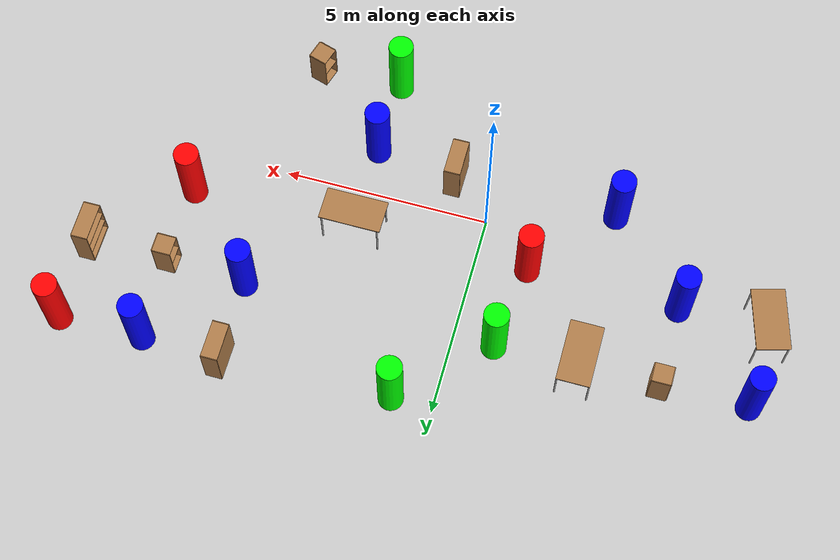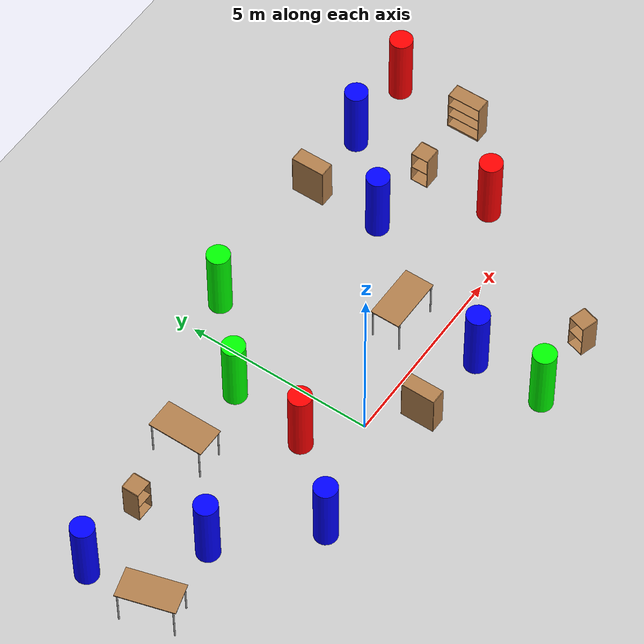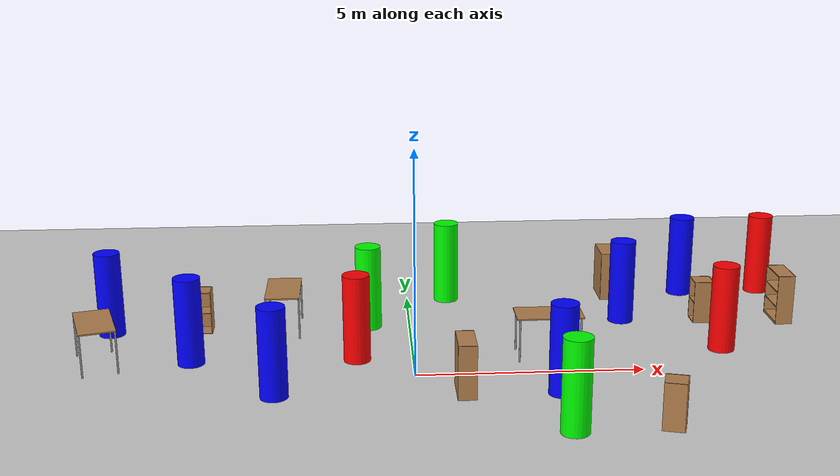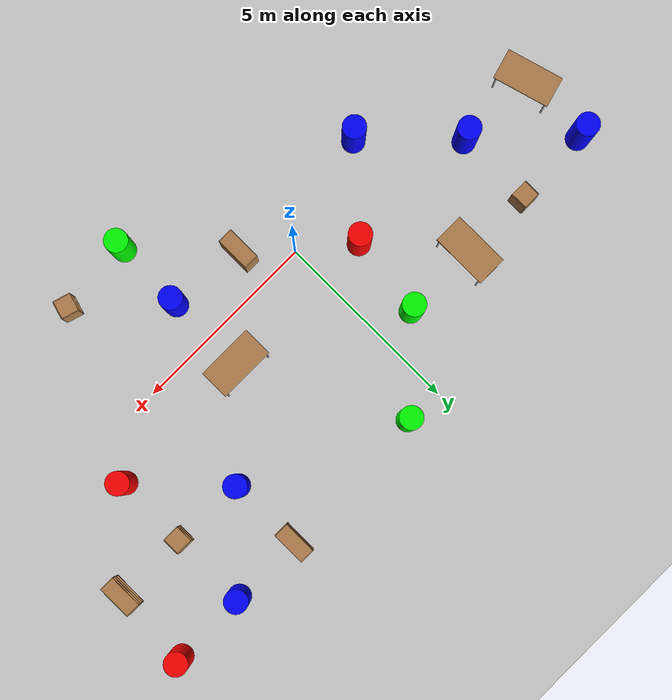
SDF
<sdf version="1.6">
 <world name="default">
  <light name="sun" type="directional">
   <pose>0 0 10 0 -0 0</pose>
   <diffuse>0.8 0.8 0.8 1</diffuse>
   <specular>0.2 0.2 0.2 1</specular>
   <attenuation>
    <range>1000</range>
    <constant>0.9</constant>
    <linear>0.01</linear>
    <quadratic>0.001</quadratic>
   </attenuation>
   <direction>-0.5 0.1 -0.9</direction>
  </light>
  <model name="ground_plane">
   <static>1</static>
   <link name="link">
    <collision name="collision">
     <geometry><plane><normal>0 0 1</normal><size>100 100</size></plane></geometry>
     <surface>
      <contact><collide_bitmask>65535</collide_bitmask></contact>
      <friction><ode><mu>100</mu><mu2>50</mu2></ode></friction>
     </surface>
    </collision>
    <visual name="visual">
     <cast_shadows>0</cast_shadows>
     <geometry><plane><normal>0 0 1</normal><size>100 100</size></plane></geometry>
     <material>
      <script><uri>file://media/materials/scripts/gazebo.material</uri><name>Gazebo/Grey</name></script>
     </material>
    </visual>
   </link>
  </model>
  <gravity>0 0 -9.8</gravity>
  <magnetic_field>6e-06 2.3e-05 -4.2e-05</magnetic_field>
  <atmosphere type="adiabatic"/>
  <physics name="default_physics" default="0" type="ode">
   <max_step_size>0.001</max_step_size>
   <real_time_factor>1</real_time_factor>
   <real_time_update_rate>1000</real_time_update_rate>
  </physics>
  <scene><ambient>0.4 0.4 0.4 1</ambient><background>0.7 0.7 0.7 1</background><shadows>0</shadows></scene>
  <audio><device>default</device></audio>
  <spherical_coordinates>
   <surface_model>EARTH_WGS84</surface_model>
   <latitude_deg>0</latitude_deg>
   <longitude_deg>0</longitude_deg>
   <elevation>0</elevation>
   <heading_deg>0</heading_deg>
  </spherical_coordinates>
  <model name="bookshelf0">
   <static>1</static>
   <link name="link">
    <inertial><mass>1</mass></inertial>
    <collision name="back">
     <pose>0 0.005 0.6 0 -0 0</pose>
     <geometry><box><size>0.9 0.01 1.2</size></box></geometry>
    </collision>
    <visual name="visual1">
     <pose>0 0.005 0.6 0 -0 0</pose>
     <geometry><box><size>0.9 0.01 1.2</size></box></geometry>
     <material>
      <script><uri>file://media/materials/scripts/gazebo.material</uri><name>Gazebo/Wood</name></script>
     </material>
    </visual>
    <collision name="left_side">
     <pose>0.45 -0.195 0.6 0 -0 0</pose>
     <geometry><box><size>0.02 0.4 1.2</size></box></geometry>
    </collision>
    <visual name="visual2">
     <pose>0.45 -0.195 0.6 0 -0 0</pose>
     <geometry><box><size>0.02 0.4 1.2</size></box></geometry>
     <material>
      <script><uri>file://media/materials/scripts/gazebo.material</uri><name>Gazebo/Wood</name></script>
     </material>
    </visual>
    <collision name="right_side">
     <pose>-0.45 -0.195 0.6 0 -0 0</pose>
     <geometry><box><size>0.02 0.4 1.2</size></box></geometry>
    </collision>
    <visual name="visual3">
     <pose>-0.45 -0.195 0.6 0 -0 0</pose>
     <geometry><box><size>0.02 0.4 1.2</size></box></geometry>
     <material>
      <script><uri>file://media/materials/scripts/gazebo.material</uri><name>Gazebo/Wood</name></script>
     </material>
    </visual>
    <collision name="bottom">
     <pose>0 -0.195 0.03 0 -0 0</pose>
     <geometry><box><size>0.88 0.4 0.06</size></box></geometry>
    </collision>
    <visual name="visual4">
     <pose>0 -0.195 0.03 0 -0 0</pose>
     <geometry><box><size>0.88 0.4 0.06</size></box></geometry>
     <material>
      <script><uri>file://media/materials/scripts/gazebo.material</uri><name>Gazebo/Wood</name></script>
     </material>
    </visual>
    <collision name="top">
     <pose>0 -0.195 1.19 0 -0 0</pose>
     <geometry><box><size>0.88 0.4 0.02</size></box></geometry>
    </collision>
    <visual name="visual5">
     <pose>0 -0.195 1.19 0 -0 0</pose>
     <geometry><box><size>0.88 0.4 0.02</size></box></geometry>
     <material>
      <script><uri>file://media/materials/scripts/gazebo.material</uri><name>Gazebo/Wood</name></script>
     </material>
    </visual>
    <collision name="low_shelf">
     <pose>0 -0.195 0.43 0 -0 0</pose>
     <geometry><box><size>0.88 0.4 0.02</size></box></geometry>
    </collision>
    <visual name="visual6">
     <pose>0 -0.195 0.43 0 -0 0</pose>
     <geometry><box><size>0.88 0.4 0.02</size></box></geometry>
     <material>
      <script><uri>file://media/materials/scripts/gazebo.material</uri><name>Gazebo/Wood</name></script>
     </material>
    </visual>
    <collision name="high_shelf">
     <pose>0 -0.195 0.8 0 -0 0</pose>
     <geometry><box><size>0.88 0.4 0.02</size></box></geometry>
    </collision>
    <visual name="visual7">
     <pose>0 -0.195 0.8 0 -0 0</pose>
     <geometry><box><size>0.88 0.4 0.02</size></box></geometry>
     <material>
      <script><uri>file://media/materials/scripts/gazebo.material</uri><name>Gazebo/Wood</name></script>
     </material>
    </visual>
   </link>
   <pose>0.815481 -0.939661 0 0 -0 1.5708</pose>
  </model>
  <model name="bookshelf3">
   <static>1</static>
   <link name="link">
    <inertial><mass>1</mass></inertial>
    <collision name="back">
     <pose>0 0.005 0.6 0 -0 0</pose>
     <geometry><box><size>0.9 0.01 1.2</size></box></geometry>
    </collision>
    <visual name="visual1">
     <pose>0 0.005 0.6 0 -0 0</pose>
     <geometry><box><size>0.9 0.01 1.2</size></box></geometry>
     <material>
      <script><uri>file://media/materials/scripts/gazebo.material</uri><name>Gazebo/Wood</name></script>
     </material>
    </visual>
    <collision name="left_side">
     <pose>0.45 -0.195 0.6 0 -0 0</pose>
     <geometry><box><size>0.02 0.4 1.2</size></box></geometry>
    </collision>
    <visual name="visual2">
     <pose>0.45 -0.195 0.6 0 -0 0</pose>
     <geometry><box><size>0.02 0.4 1.2</size></box></geometry>
     <material>
      <script><uri>file://media/materials/scripts/gazebo.material</uri><name>Gazebo/Wood</name></script>
     </material>
    </visual>
    <collision name="right_side">
     <pose>-0.45 -0.195 0.6 0 -0 0</pose>
     <geometry><box><size>0.02 0.4 1.2</size></box></geometry>
    </collision>
    <visual name="visual3">
     <pose>-0.45 -0.195 0.6 0 -0 0</pose>
     <geometry><box><size>0.02 0.4 1.2</size></box></geometry>
     <material>
      <script><uri>file://media/materials/scripts/gazebo.material</uri><name>Gazebo/Wood</name></script>
     </material>
    </visual>
    <collision name="bottom">
     <pose>0 -0.195 0.03 0 -0 0</pose>
     <geometry><box><size>0.88 0.4 0.06</size></box></geometry>
    </collision>
    <visual name="visual4">
     <pose>0 -0.195 0.03 0 -0 0</pose>
     <geometry><box><size>0.88 0.4 0.06</size></box></geometry>
     <material>
      <script><uri>file://media/materials/scripts/gazebo.material</uri><name>Gazebo/Wood</name></script>
     </material>
    </visual>
    <collision name="top">
     <pose>0 -0.195 1.19 0 -0 0</pose>
     <geometry><box><size>0.88 0.4 0.02</size></box></geometry>
    </collision>
    <visual name="visual5">
     <pose>0 -0.195 1.19 0 -0 0</pose>
     <geometry><box><size>0.88 0.4 0.02</size></box></geometry>
     <material>
      <script><uri>file://media/materials/scripts/gazebo.material</uri><name>Gazebo/Wood</name></script>
     </material>
    </visual>
    <collision name="low_shelf">
     <pose>0 -0.195 0.43 0 -0 0</pose>
     <geometry><box><size>0.88 0.4 0.02</size></box></geometry>
    </collision>
    <visual name="visual6">
     <pose>0 -0.195 0.43 0 -0 0</pose>
     <geometry><box><size>0.88 0.4 0.02</size></box></geometry>
     <material>
      <script><uri>file://media/materials/scripts/gazebo.material</uri><name>Gazebo/Wood</name></script>
     </material>
    </visual>
    <collision name="high_shelf">
     <pose>0 -0.195 0.8 0 -0 0</pose>
     <geometry><box><size>0.88 0.4 0.02</size></box></geometry>
    </collision>
    <visual name="visual7">
     <pose>0 -0.195 0.8 0 -0 0</pose>
     <geometry><box><size>0.88 0.4 0.02</size></box></geometry>
     <material>
      <script><uri>file://media/materials/scripts/gazebo.material</uri><name>Gazebo/Wood</name></script>
     </material>
    </visual>
   </link>
   <pose>9.14831 3.01375 0 0 0 -1.57079</pose>
  </model>
  <model name="bookshelf4">
   <static>1</static>
   <link name="link">
    <inertial><mass>1</mass></inertial>
    <collision name="back">
     <pose>0 0.005 0.6 0 -0 0</pose>
     <geometry><box><size>0.9 0.01 1.2</size></box></geometry>
    </collision>
    <visual name="visual1">
     <pose>0 0.005 0.6 0 -0 0</pose>
     <geometry><box><size>0.9 0.01 1.2</size></box></geometry>
     <material>
      <script><uri>file://media/materials/scripts/gazebo.material</uri><name>Gazebo/Wood</name></script>
     </material>
    </visual>
    <collision name="left_side">
     <pose>0.45 -0.195 0.6 0 -0 0</pose>
     <geometry><box><size>0.02 0.4 1.2</size></box></geometry>
    </collision>
    <visual name="visual2">
     <pose>0.45 -0.195 0.6 0 -0 0</pose>
     <geometry><box><size>0.02 0.4 1.2</size></box></geometry>
     <material>
      <script><uri>file://media/materials/scripts/gazebo.material</uri><name>Gazebo/Wood</name></script>
     </material>
    </visual>
    <collision name="right_side">
     <pose>-0.45 -0.195 0.6 0 -0 0</pose>
     <geometry><box><size>0.02 0.4 1.2</size></box></geometry>
    </collision>
    <visual name="visual3">
     <pose>-0.45 -0.195 0.6 0 -0 0</pose>
     <geometry><box><size>0.02 0.4 1.2</size></box></geometry>
     <material>
      <script><uri>file://media/materials/scripts/gazebo.material</uri><name>Gazebo/Wood</name></script>
     </material>
    </visual>
    <collision name="bottom">
     <pose>0 -0.195 0.03 0 -0 0</pose>
     <geometry><box><size>0.88 0.4 0.06</size></box></geometry>
    </collision>
    <visual name="visual4">
     <pose>0 -0.195 0.03 0 -0 0</pose>
     <geometry><box><size>0.88 0.4 0.06</size></box></geometry>
     <material>
      <script><uri>file://media/materials/scripts/gazebo.material</uri><name>Gazebo/Wood</name></script>
     </material>
    </visual>
    <collision name="top">
     <pose>0 -0.195 1.19 0 -0 0</pose>
     <geometry><box><size>0.88 0.4 0.02</size></box></geometry>
    </collision>
    <visual name="visual5">
     <pose>0 -0.195 1.19 0 -0 0</pose>
     <geometry><box><size>0.88 0.4 0.02</size></box></geometry>
     <material>
      <script><uri>file://media/materials/scripts/gazebo.material</uri><name>Gazebo/Wood</name></script>
     </material>
    </visual>
    <collision name="low_shelf">
     <pose>0 -0.195 0.43 0 -0 0</pose>
     <geometry><box><size>0.88 0.4 0.02</size></box></geometry>
    </collision>
    <visual name="visual6">
     <pose>0 -0.195 0.43 0 -0 0</pose>
     <geometry><box><size>0.88 0.4 0.02</size></box></geometry>
     <material>
      <script><uri>file://media/materials/scripts/gazebo.material</uri><name>Gazebo/Wood</name></script>
     </material>
    </visual>
    <collision name="high_shelf">
     <pose>0 -0.195 0.8 0 -0 0</pose>
     <geometry><box><size>0.88 0.4 0.02</size></box></geometry>
    </collision>
    <visual name="visual7">
     <pose>0 -0.195 0.8 0 -0 0</pose>
     <geometry><box><size>0.88 0.4 0.02</size></box></geometry>
     <material>
      <script><uri>file://media/materials/scripts/gazebo.material</uri><name>Gazebo/Wood</name></script>
     </material>
    </visual>
   </link>
   <pose>4.88803 5.06253 0 0 -0 1.5708</pose>
  </model>
  <model name="cabinet0">
   <static>1</static>
   <link name="cabinet_bottom_plate">
    <inertial>
     <pose>0 0 -1 0 -0 0</pose>
     <inertia><ixx>2.05</ixx><ixy>0</ixy><ixz>0</ixz><iyy>2.05</iyy><iyz>0</iyz><izz>2.05</izz></inertia>
     <mass>25</mass>
    </inertial>
    <collision name="cabinet_bottom_plate_geom">
     <pose>0 0 0.01 0 -0 0</pose>
     <geometry><box><size>0.45 0.45 0.02</size></box></geometry>
    </collision>
    <visual name="cabinet_bottom_plate_geom_visual">
     <pose>0 0 0.01 0 -0 0</pose>
     <geometry><box><size>0.45 0.45 0.02</size></box></geometry>
     <material>
      <script><uri>file://media/materials/scripts/gazebo.material</uri><name>Gazebo/Wood</name></script>
     </material>
    </visual>
    <collision name="cabinet_bottom_plate_geom_cabinet_back_plate">
     <pose>0.235 0 0.51 0 -0 0</pose>
     <geometry><box><size>0.02 0.45 1.02</size></box></geometry>
    </collision>
    <visual name="cabinet_bottom_plate_geom_cabinet_back_plate_visual">
     <pose>0.235 0 0.51 0 -0 0</pose>
     <geometry><box><size>0.02 0.45 1.02</size></box></geometry>
     <material>
      <script><uri>file://media/materials/scripts/gazebo.material</uri><name>Gazebo/Wood</name></script>
     </material>
    </visual>
    <collision name="cabinet_bottom_plate_geom_cabinet_left_plate">
     <pose>0 0.235 0.51 0 -0 0</pose>
     <geometry><box><size>0.45 0.02 1.02</size></box></geometry>
    </collision>
    <visual name="cabinet_bottom_plate_geom_cabinet_left_plate_visual">
     <pose>0 0.235 0.51 0 -0 0</pose>
     <geometry><box><size>0.45 0.02 1.02</size></box></geometry>
     <material>
      <script><uri>file://media/materials/scripts/gazebo.material</uri><name>Gazebo/Wood</name></script>
     </material>
    </visual>
    <collision name="cabinet_bottom_plate_geom_cabinet_middle_plate">
     <pose>0 0 0.51 0 -0 0</pose>
     <geometry><box><size>0.45 0.45 0.02</size></box></geometry>
    </collision>
    <visual name="cabinet_bottom_plate_geom_cabinet_middle_plate_visual">
     <pose>0 0 0.51 0 -0 0</pose>
     <geometry><box><size>0.45 0.45 0.02</size></box></geometry>
     <material>
      <script><uri>file://media/materials/scripts/gazebo.material</uri><name>Gazebo/Wood</name></script>
     </material>
    </visual>
    <collision name="cabinet_bottom_plate_geom_cabinet_right_plate">
     <pose>0 -0.235 0.51 0 -0 0</pose>
     <geometry><box><size>0.45 0.02 1.02</size></box></geometry>
    </collision>
    <visual name="cabinet_bottom_plate_geom_cabinet_right_plate_visual">
     <pose>0 -0.235 0.51 0 -0 0</pose>
     <geometry><box><size>0.45 0.02 1.02</size></box></geometry>
     <material>
      <script><uri>file://media/materials/scripts/gazebo.material</uri><name>Gazebo/Wood</name></script>
     </material>
    </visual>
    <collision name="cabinet_bottom_plate_geom_cabinet_top_plate">
     <pose>0 0 1.01 0 -0 0</pose>
     <geometry><box><size>0.45 0.45 0.02</size></box></geometry>
    </collision>
    <visual name="cabinet_bottom_plate_geom_cabinet_top_plate_visual">
     <pose>0 0 1.01 0 -0 0</pose>
     <geometry><box><size>0.45 0.45 0.02</size></box></geometry>
     <material>
      <script><uri>file://media/materials/scripts/gazebo.material</uri><name>Gazebo/Wood</name></script>
     </material>
    </visual>
   </link>
   <pose>7.02974 3.02765 0 0 -0 0</pose>
  </model>
  <model name="cabinet4">
   <static>1</static>
   <link name="cabinet_bottom_plate">
    <inertial>
     <pose>0 0 -1 0 -0 0</pose>
     <inertia><ixx>2.05</ixx><ixy>0</ixy><ixz>0</ixz><iyy>2.05</iyy><iyz>0</iyz><izz>2.05</izz></inertia>
     <mass>25</mass>
    </inertial>
    <collision name="cabinet_bottom_plate_geom">
     <pose>0 0 0.01 0 -0 0</pose>
     <geometry><box><size>0.45 0.45 0.02</size></box></geometry>
    </collision>
    <visual name="cabinet_bottom_plate_geom_visual">
     <pose>0 0 0.01 0 -0 0</pose>
     <geometry><box><size>0.45 0.45 0.02</size></box></geometry>
     <material>
      <script><uri>file://media/materials/scripts/gazebo.material</uri><name>Gazebo/Wood</name></script>
     </material>
    </visual>
    <collision name="cabinet_bottom_plate_geom_cabinet_back_plate">
     <pose>0.235 0 0.51 0 -0 0</pose>
     <geometry><box><size>0.02 0.45 1.02</size></box></geometry>
    </collision>
    <visual name="cabinet_bottom_plate_geom_cabinet_back_plate_visual">
     <pose>0.235 0 0.51 0 -0 0</pose>
     <geometry><box><size>0.02 0.45 1.02</size></box></geometry>
     <material>
      <script><uri>file://media/materials/scripts/gazebo.material</uri><name>Gazebo/Wood</name></script>
     </material>
    </visual>
    <collision name="cabinet_bottom_plate_geom_cabinet_left_plate">
     <pose>0 0.235 0.51 0 -0 0</pose>
     <geometry><box><size>0.45 0.02 1.02</size></box></geometry>
    </collision>
    <visual name="cabinet_bottom_plate_geom_cabinet_left_plate_visual">
     <pose>0 0.235 0.51 0 -0 0</pose>
     <geometry><box><size>0.45 0.02 1.02</size></box></geometry>
     <material>
      <script><uri>file://media/materials/scripts/gazebo.material</uri><name>Gazebo/Wood</name></script>
     </material>
    </visual>
    <collision name="cabinet_bottom_plate_geom_cabinet_middle_plate">
     <pose>0 0 0.51 0 -0 0</pose>
     <geometry><box><size>0.45 0.45 0.02</size></box></geometry>
    </collision>
    <visual name="cabinet_bottom_plate_geom_cabinet_middle_plate_visual">
     <pose>0 0 0.51 0 -0 0</pose>
     <geometry><box><size>0.45 0.45 0.02</size></box></geometry>
     <material>
      <script><uri>file://media/materials/scripts/gazebo.material</uri><name>Gazebo/Wood</name></script>
     </material>
    </visual>
    <collision name="cabinet_bottom_plate_geom_cabinet_right_plate">
     <pose>0 -0.235 0.51 0 -0 0</pose>
     <geometry><box><size>0.45 0.02 1.02</size></box></geometry>
    </collision>
    <visual name="cabinet_bottom_plate_geom_cabinet_right_plate_visual">
     <pose>0 -0.235 0.51 0 -0 0</pose>
     <geometry><box><size>0.45 0.02 1.02</size></box></geometry>
     <material>
      <script><uri>file://media/materials/scripts/gazebo.material</uri><name>Gazebo/Wood</name></script>
     </material>
    </visual>
    <collision name="cabinet_bottom_plate_geom_cabinet_top_plate">
     <pose>0 0 1.01 0 -0 0</pose>
     <geometry><box><size>0.45 0.45 0.02</size></box></geometry>
    </collision>
    <visual name="cabinet_bottom_plate_geom_cabinet_top_plate_visual">
     <pose>0 0 1.01 0 -0 0</pose>
     <geometry><box><size>0.45 0.45 0.02</size></box></geometry>
     <material>
      <script><uri>file://media/materials/scripts/gazebo.material</uri><name>Gazebo/Wood</name></script>
     </material>
    </visual>
   </link>
   <pose>-4.89969 3.05427 0 0 -0 1.5708</pose>
  </model>
  <model name="table1">
   <static>1</static>
   <link name="link">
    <collision name="surface">
     <pose>0 0 1 0 -0 0</pose>
     <geometry><box><size>1.5 0.8 0.03</size></box></geometry>
     <surface><friction><ode><mu>0.6</mu><mu2>0.6</mu2></ode></friction></surface>
    </collision>
    <visual name="visual1">
     <pose>0 0 1 0 -0 0</pose>
     <geometry><box><size>1.5 0.8 0.03</size></box></geometry>
     <material>
      <script><uri>file://media/materials/scripts/gazebo.material</uri><name>Gazebo/Wood</name></script>
     </material>
    </visual>
    <collision name="front_left_leg">
     <pose>0.68 0.38 0.5 0 -0 0</pose>
     <geometry><cylinder><radius>0.02</radius><length>1</length></cylinder></geometry>
    </collision>
    <visual name="front_left_leg">
     <pose>0.68 0.38 0.5 0 -0 0</pose>
     <geometry><cylinder><radius>0.02</radius><length>1</length></cylinder></geometry>
     <material>
      <script><uri>file://media/materials/scripts/gazebo.material</uri><name>Gazebo/Grey</name></script>
     </material>
    </visual>
    <collision name="front_right_leg">
     <pose>0.68 -0.38 0.5 0 -0 0</pose>
     <geometry><cylinder><radius>0.02</radius><length>1</length></cylinder></geometry>
    </collision>
    <visual name="front_right_leg">
     <pose>0.68 -0.38 0.5 0 -0 0</pose>
     <geometry><cylinder><radius>0.02</radius><length>1</length></cylinder></geometry>
     <material>
      <script><uri>file://media/materials/scripts/gazebo.material</uri><name>Gazebo/Grey</name></script>
     </material>
    </visual>
    <collision name="back_right_leg">
     <pose>-0.68 -0.38 0.5 0 -0 0</pose>
     <geometry><cylinder><radius>0.02</radius><length>1</length></cylinder></geometry>
    </collision>
    <visual name="back_right_leg">
     <pose>-0.68 -0.38 0.5 0 -0 0</pose>
     <geometry><cylinder><radius>0.02</radius><length>1</length></cylinder></geometry>
     <material>
      <script><uri>file://media/materials/scripts/gazebo.material</uri><name>Gazebo/Grey</name></script>
     </material>
    </visual>
    <collision name="back_left_leg">
     <pose>-0.68 0.38 0.5 0 -0 0</pose>
     <geometry><cylinder><radius>0.02</radius><length>1</length></cylinder></geometry>
    </collision>
    <visual name="back_left_leg">
     <pose>-0.68 0.38 0.5 0 -0 0</pose>
     <geometry><cylinder><radius>0.02</radius><length>1</length></cylinder></geometry>
     <material>
      <script><uri>file://media/materials/scripts/gazebo.material</uri><name>Gazebo/Grey</name></script>
     </material>
    </visual>
   </link>
   <pose>3.01483 0.983647 0 0 -0 0</pose>
  </model>
  <model name="table2">
   <static>1</static>
   <link name="link">
    <collision name="surface">
     <pose>0 0 1 0 -0 0</pose>
     <geometry><box><size>1.5 0.8 0.03</size></box></geometry>
     <surface><friction><ode><mu>0.6</mu><mu2>0.6</mu2></ode></friction></surface>
    </collision>
    <visual name="visual1">
     <pose>0 0 1 0 -0 0</pose>
     <geometry><box><size>1.5 0.8 0.03</size></box></geometry>
     <material>
      <script><uri>file://media/materials/scripts/gazebo.material</uri><name>Gazebo/Wood</name></script>
     </material>
    </visual>
    <collision name="front_left_leg">
     <pose>0.68 0.38 0.5 0 -0 0</pose>
     <geometry><cylinder><radius>0.02</radius><length>1</length></cylinder></geometry>
    </collision>
    <visual name="front_left_leg">
     <pose>0.68 0.38 0.5 0 -0 0</pose>
     <geometry><cylinder><radius>0.02</radius><length>1</length></cylinder></geometry>
     <material>
      <script><uri>file://media/materials/scripts/gazebo.material</uri><name>Gazebo/Grey</name></script>
     </material>
    </visual>
    <collision name="front_right_leg">
     <pose>0.68 -0.38 0.5 0 -0 0</pose>
     <geometry><cylinder><radius>0.02</radius><length>1</length></cylinder></geometry>
    </collision>
    <visual name="front_right_leg">
     <pose>0.68 -0.38 0.5 0 -0 0</pose>
     <geometry><cylinder><radius>0.02</radius><length>1</length></cylinder></geometry>
     <material>
      <script><uri>file://media/materials/scripts/gazebo.material</uri><name>Gazebo/Grey</name></script>
     </material>
    </visual>
    <collision name="back_right_leg">
     <pose>-0.68 -0.38 0.5 0 -0 0</pose>
     <geometry><cylinder><radius>0.02</radius><length>1</length></cylinder></geometry>
    </collision>
    <visual name="back_right_leg">
     <pose>-0.68 -0.38 0.5 0 -0 0</pose>
     <geometry><cylinder><radius>0.02</radius><length>1</length></cylinder></geometry>
     <material>
      <script><uri>file://media/materials/scripts/gazebo.material</uri><name>Gazebo/Grey</name></script>
     </material>
    </visual>
    <collision name="back_left_leg">
     <pose>-0.68 0.38 0.5 0 -0 0</pose>
     <geometry><cylinder><radius>0.02</radius><length>1</length></cylinder></geometry>
    </collision>
    <visual name="back_left_leg">
     <pose>-0.68 0.38 0.5 0 -0 0</pose>
     <geometry><cylinder><radius>0.02</radius><length>1</length></cylinder></geometry>
     <material>
      <script><uri>file://media/materials/scripts/gazebo.material</uri><name>Gazebo/Grey</name></script>
     </material>
    </visual>
   </link>
   <pose>-2.97552 3.06916 0 0 -0 1.5708</pose>
  </model>
  <model name="red0">
   <link name="link">
    <pose>-0.202221 0.506091 0 0 -0 0</pose>
    <inertial>
     <mass>1</mass>
     <inertia><ixx>0.145833</ixx><ixy>0</ixy><ixz>0</ixz><iyy>0.145833</iyy><iyz>0</iyz><izz>0.125</izz></inertia>
    </inertial>
    <visual name="visual">
     <geometry><cylinder><radius>0.3</radius><length>2</length></cylinder></geometry>
     <material>
      <script><name>Gazebo/Grey</name><uri>file://media/materials/scripts/gazebo.material</uri></script>
      <ambient>1 0 0 1</ambient>
      <diffuse>0.7 0.7 0.7 1</diffuse>
      <specular>0.01 0.01 0.01 1</specular>
      <emissive>0 0 0 1</emissive>
      <shader type="vertex"><normal_map>__default__</normal_map></shader>
     </material>
    </visual>
    <collision name="collision">
     <geometry><cylinder><radius>0.3</radius><length>2</length></cylinder></geometry>
     <surface>
      <friction>
       <ode><mu>1</mu><mu2>1</mu2><fdir1>0 0 0</fdir1><slip1>0</slip1><slip2>0</slip2></ode>
       <torsional>
        <coefficient>1</coefficient>
        <patch_radius>0</patch_radius>
        <surface_radius>0</surface_radius>
        <use_patch_radius>1</use_patch_radius>
        <ode><slip>0</slip></ode>
       </torsional>
      </friction>
      <bounce><restitution_coefficient>0</restitution_coefficient><threshold>1e+06</threshold></bounce>
      <contact>
       <collide_without_contact>0</collide_without_contact>
       <collide_without_contact_bitmask>1</collide_without_contact_bitmask>
       <collide_bitmask>1</collide_bitmask>
       <ode>
        <soft_cfm>0</soft_cfm>
        <soft_erp>0.2</soft_erp>
        <kp>1e+13</kp>
        <kd>1</kd>
        <max_vel>0.01</max_vel>
        <min_depth>0</min_depth>
       </ode>
       <bullet>
        <split_impulse>1</split_impulse>
        <split_impulse_penetration_threshold>-0.01</split_impulse_penetration_threshold>
        <soft_cfm>0</soft_cfm>
        <soft_erp>0.2</soft_erp>
        <kp>1e+13</kp>
        <kd>1</kd>
       </bullet>
      </contact>
     </surface>
    </collision>
   </link>
   <static>0</static>
   <pose>-1.0572 0.467532 0.999992 0 -0 6.4e-05</pose>
  </model>
  <model name="red3">
   <link name="link">
    <pose>-0.202221 0.506091 0 0 -0 0</pose>
    <inertial>
     <mass>1</mass>
     <inertia><ixx>0.145833</ixx><ixy>0</ixy><ixz>0</ixz><iyy>0.145833</iyy><iyz>0</iyz><izz>0.125</izz></inertia>
    </inertial>
    <visual name="visual">
     <geometry><cylinder><radius>0.3</radius><length>2</length></cylinder></geometry>
     <material>
      <script><name>Gazebo/Grey</name><uri>file://media/materials/scripts/gazebo.material</uri></script>
      <ambient>1 0 0 1</ambient>
      <diffuse>0.7 0.7 0.7 1</diffuse>
      <specular>0.01 0.01 0.01 1</specular>
      <emissive>0 0 0 1</emissive>
      <shader type="vertex"><normal_map>__default__</normal_map></shader>
     </material>
    </visual>
    <collision name="collision">
     <geometry><cylinder><radius>0.3</radius><length>2</length></cylinder></geometry>
     <surface>
      <friction>
       <ode><mu>1</mu><mu2>1</mu2><fdir1>0 0 0</fdir1><slip1>0</slip1><slip2>0</slip2></ode>
       <torsional>
        <coefficient>1</coefficient>
        <patch_radius>0</patch_radius>
        <surface_radius>0</surface_radius>
        <use_patch_radius>1</use_patch_radius>
        <ode><slip>0</slip></ode>
       </torsional>
      </friction>
      <bounce><restitution_coefficient>0</restitution_coefficient><threshold>1e+06</threshold></bounce>
      <contact>
       <collide_without_contact>0</collide_without_contact>
       <collide_without_contact_bitmask>1</collide_without_contact_bitmask>
       <collide_bitmask>1</collide_bitmask>
       <ode>
        <soft_cfm>0</soft_cfm>
        <soft_erp>0.2</soft_erp>
        <kp>1e+13</kp>
        <kd>1</kd>
        <max_vel>0.01</max_vel>
        <min_depth>0</min_depth>
       </ode>
       <bullet>
        <split_impulse>1</split_impulse>
        <split_impulse_penetration_threshold>-0.01</split_impulse_penetration_threshold>
        <soft_cfm>0</soft_cfm>
        <soft_erp>0.2</soft_erp>
        <kp>1e+13</kp>
        <kd>1</kd>
       </bullet>
      </contact>
     </surface>
    </collision>
   </link>
   <static>0</static>
   <pose>9.23144 4.58371 1 0 -0 5.3e-05</pose>
  </model>
  <model name="red5">
   <link name="link">
    <pose>-0.202221 0.506091 0 0 -0 0</pose>
    <inertial>
     <mass>1</mass>
     <inertia><ixx>0.145833</ixx><ixy>0</ixy><ixz>0</ixz><iyy>0.145833</iyy><iyz>0</iyz><izz>0.125</izz></inertia>
    </inertial>
    <visual name="visual">
     <geometry><cylinder><radius>0.3</radius><length>2</length></cylinder></geometry>
     <material>
      <script><name>Gazebo/Grey</name><uri>file://media/materials/scripts/gazebo.material</uri></script>
      <ambient>1 0 0 1</ambient>
      <diffuse>0.7 0.7 0.7 1</diffuse>
      <specular>0.01 0.01 0.01 1</specular>
      <emissive>0 0 0 1</emissive>
      <shader type="vertex"><normal_map>__default__</normal_map></shader>
     </material>
    </visual>
    <collision name="collision">
     <geometry><cylinder><radius>0.3</radius><length>2</length></cylinder></geometry>
     <surface>
      <friction>
       <ode><mu>1</mu><mu2>1</mu2><fdir1>0 0 0</fdir1><slip1>0</slip1><slip2>0</slip2></ode>
       <torsional>
        <coefficient>1</coefficient>
        <patch_radius>0</patch_radius>
        <surface_radius>0</surface_radius>
        <use_patch_radius>1</use_patch_radius>
        <ode><slip>0</slip></ode>
       </torsional>
      </friction>
      <bounce><restitution_coefficient>0</restitution_coefficient><threshold>1e+06</threshold></bounce>
      <contact>
       <collide_without_contact>0</collide_without_contact>
       <collide_without_contact_bitmask>1</collide_without_contact_bitmask>
       <collide_bitmask>1</collide_bitmask>
       <ode>
        <soft_cfm>0</soft_cfm>
        <soft_erp>0.2</soft_erp>
        <kp>1e+13</kp>
        <kd>1</kd>
        <max_vel>0.01</max_vel>
        <min_depth>0</min_depth>
       </ode>
       <bullet>
        <split_impulse>1</split_impulse>
        <split_impulse_penetration_threshold>-0.01</split_impulse_penetration_threshold>
        <soft_cfm>0</soft_cfm>
        <soft_erp>0.2</soft_erp>
        <kp>1e+13</kp>
        <kd>1</kd>
       </bullet>
      </contact>
     </surface>
    </collision>
   </link>
   <static>0</static>
   <pose>7.22202 0.587315 0.999991 0 -0 4.9e-05</pose>
  </model>
  <model name="green4">
   <link name="link">
    <inertial>
     <mass>1</mass>
     <inertia><ixx>0.145833</ixx><ixy>0</ixy><ixz>0</ixz><iyy>0.145833</iyy><iyz>0</iyz><izz>0.125</izz></inertia>
    </inertial>
    <visual name="visual">
     <geometry><cylinder><radius>0.3</radius><length>2</length></cylinder></geometry>
     <material>
      <script><name>Gazebo/Grey</name><uri>file://media/materials/scripts/gazebo.material</uri></script>
      <ambient>0 1 0 1</ambient>
      <diffuse>0.7 0.7 0.7 1</diffuse>
      <specular>0.01 0.01 0.01 1</specular>
      <emissive>0 0 0 1</emissive>
      <shader type="vertex"><normal_map>__default__</normal_map></shader>
     </material>
    </visual>
    <collision name="collision">
     <geometry><cylinder><radius>0.3</radius><length>2</length></cylinder></geometry>
     <surface>
      <friction>
       <ode><mu>1</mu><mu2>1</mu2><fdir1>0 0 0</fdir1><slip1>0</slip1><slip2>0</slip2></ode>
       <torsional>
        <coefficient>1</coefficient>
        <patch_radius>0</patch_radius>
        <surface_radius>0</surface_radius>
        <use_patch_radius>1</use_patch_radius>
        <ode><slip>0</slip></ode>
       </torsional>
      </friction>
      <bounce><restitution_coefficient>0</restitution_coefficient><threshold>1e+06</threshold></bounce>
      <contact>
       <collide_without_contact>0</collide_without_contact>
       <collide_without_contact_bitmask>1</collide_without_contact_bitmask>
       <collide_bitmask>1</collide_bitmask>
       <ode>
        <soft_cfm>0</soft_cfm>
        <soft_erp>0.2</soft_erp>
        <kp>1e+13</kp>
        <kd>1</kd>
        <max_vel>0.01</max_vel>
        <min_depth>0</min_depth>
       </ode>
       <bullet>
        <split_impulse>1</split_impulse>
        <split_impulse_penetration_threshold>-0.01</split_impulse_penetration_threshold>
        <soft_cfm>0</soft_cfm>
        <soft_erp>0.2</soft_erp>
        <kp>1e+13</kp>
        <kd>1</kd>
       </bullet>
      </contact>
     </surface>
    </collision>
   </link>
   <static>0</static>
   <pose>0.987877 4.92629 0.99999 0 -0 5.8e-05</pose>
  </model>
  <model name="green6">
   <link name="link">
    <inertial>
     <mass>1</mass>
     <inertia><ixx>0.145833</ixx><ixy>0</ixy><ixz>0</ixz><iyy>0.145833</iyy><iyz>0</iyz><izz>0.125</izz></inertia>
    </inertial>
    <visual name="visual">
     <geometry><cylinder><radius>0.3</radius><length>2</length></cylinder></geometry>
     <material>
      <script><name>Gazebo/Grey</name><uri>file://media/materials/scripts/gazebo.material</uri></script>
      <ambient>0 1 0 1</ambient>
      <diffuse>0.7 0.7 0.7 1</diffuse>
      <specular>0.01 0.01 0.01 1</specular>
      <emissive>0 0 0 1</emissive>
      <shader type="vertex"><normal_map>__default__</normal_map></shader>
     </material>
    </visual>
    <collision name="collision">
     <geometry><cylinder><radius>0.3</radius><length>2</length></cylinder></geometry>
     <surface>
      <friction>
       <ode><mu>1</mu><mu2>1</mu2><fdir1>0 0 0</fdir1><slip1>0</slip1><slip2>0</slip2></ode>
       <torsional>
        <coefficient>1</coefficient>
        <patch_radius>0</patch_radius>
        <surface_radius>0</surface_radius>
        <use_patch_radius>1</use_patch_radius>
        <ode><slip>0</slip></ode>
       </torsional>
      </friction>
      <bounce><restitution_coefficient>0</restitution_coefficient><threshold>1e+06</threshold></bounce>
      <contact>
       <collide_without_contact>0</collide_without_contact>
       <collide_without_contact_bitmask>1</collide_without_contact_bitmask>
       <collide_bitmask>1</collide_bitmask>
       <ode>
        <soft_cfm>0</soft_cfm>
        <soft_erp>0.2</soft_erp>
        <kp>1e+13</kp>
        <kd>1</kd>
        <max_vel>0.01</max_vel>
        <min_depth>0</min_depth>
       </ode>
       <bullet>
        <split_impulse>1</split_impulse>
        <split_impulse_penetration_threshold>-0.01</split_impulse_penetration_threshold>
        <soft_cfm>0</soft_cfm>
        <soft_erp>0.2</soft_erp>
        <kp>1e+13</kp>
        <kd>1</kd>
       </bullet>
      </contact>
     </surface>
    </collision>
   </link>
   <static>0</static>
   <pose>-0.978782 3.07431 1 0 -0 1.57248</pose>
  </model>
  <model name="blue0">
   <link name="link">
    <inertial>
     <mass>1</mass>
     <inertia><ixx>0.145833</ixx><ixy>0</ixy><ixz>0</ixz><iyy>0.145833</iyy><iyz>0</iyz><izz>0.125</izz></inertia>
    </inertial>
    <visual name="visual">
     <geometry><cylinder><radius>0.3</radius><length>2</length></cylinder></geometry>
     <material>
      <script><name>Gazebo/Grey</name><uri>file://media/materials/scripts/gazebo.material</uri></script>
      <ambient>0 0 1 1</ambient>
      <diffuse>0.7 0.7 0.7 1</diffuse>
      <specular>0.01 0.01 0.01 1</specular>
      <emissive>0 0 0 1</emissive>
      <shader type="vertex"><normal_map>__default__</normal_map></shader>
     </material>
    </visual>
    <collision name="collision">
     <geometry><cylinder><radius>0.2</radius><length>2</length></cylinder></geometry>
     <surface>
      <friction>
       <ode><mu>1</mu><mu2>1</mu2><fdir1>0 0 0</fdir1><slip1>0</slip1><slip2>0</slip2></ode>
       <torsional>
        <coefficient>1</coefficient>
        <patch_radius>0</patch_radius>
        <surface_radius>0</surface_radius>
        <use_patch_radius>1</use_patch_radius>
        <ode><slip>0</slip></ode>
       </torsional>
      </friction>
      <bounce><restitution_coefficient>0</restitution_coefficient><threshold>1e+06</threshold></bounce>
      <contact>
       <collide_without_contact>0</collide_without_contact>
       <collide_without_contact_bitmask>1</collide_without_contact_bitmask>
       <collide_bitmask>1</collide_bitmask>
       <ode>
        <soft_cfm>0</soft_cfm>
        <soft_erp>0.2</soft_erp>
        <kp>1e+13</kp>
        <kd>1</kd>
        <max_vel>0.01</max_vel>
        <min_depth>0</min_depth>
       </ode>
       <bullet>
        <split_impulse>1</split_impulse>
        <split_impulse_penetration_threshold>-0.01</split_impulse_penetration_threshold>
        <soft_cfm>0</soft_cfm>
        <soft_erp>0.2</soft_erp>
        <kp>1e+13</kp>
        <kd>1</kd>
       </bullet>
      </contact>
     </surface>
    </collision>
   </link>
   <static>0</static>
   <pose>3.0233 -1.15354 0.999994 0 -0 -0.006977</pose>
  </model>
  <model name="blue1">
   <link name="link">
    <inertial>
     <mass>1</mass>
     <inertia><ixx>0.145833</ixx><ixy>0</ixy><ixz>0</ixz><iyy>0.145833</iyy><iyz>0</iyz><izz>0.125</izz></inertia>
    </inertial>
    <visual name="visual">
     <geometry><cylinder><radius>0.3</radius><length>2</length></cylinder></geometry>
     <material>
      <script><name>Gazebo/Grey</name><uri>file://media/materials/scripts/gazebo.material</uri></script>
      <ambient>0 0 1 1</ambient>
      <diffuse>0.7 0.7 0.7 1</diffuse>
      <specular>0.01 0.01 0.01 1</specular>
      <emissive>0 0 0 1</emissive>
      <shader type="vertex"><normal_map>__default__</normal_map></shader>
     </material>
    </visual>
    <collision name="collision">
     <geometry><cylinder><radius>0.2</radius><length>2</length></cylinder></geometry>
     <surface>
      <friction>
       <ode><mu>1</mu><mu2>1</mu2><fdir1>0 0 0</fdir1><slip1>0</slip1><slip2>0</slip2></ode>
       <torsional>
        <coefficient>1</coefficient>
        <patch_radius>0</patch_radius>
        <surface_radius>0</surface_radius>
        <use_patch_radius>1</use_patch_radius>
        <ode><slip>0</slip></ode>
       </torsional>
      </friction>
      <bounce><restitution_coefficient>0</restitution_coefficient><threshold>1e+06</threshold></bounce>
      <contact>
       <collide_without_contact>0</collide_without_contact>
       <collide_without_contact_bitmask>1</collide_without_contact_bitmask>
       <collide_bitmask>1</collide_bitmask>
       <ode>
        <soft_cfm>0</soft_cfm>
        <soft_erp>0.2</soft_erp>
        <kp>1e+13</kp>
        <kd>1</kd>
        <max_vel>0.01</max_vel>
        <min_depth>0</min_depth>
       </ode>
       <bullet>
        <split_impulse>1</split_impulse>
        <split_impulse_penetration_threshold>-0.01</split_impulse_penetration_threshold>
        <soft_cfm>0</soft_cfm>
        <soft_erp>0.2</soft_erp>
        <kp>1e+13</kp>
        <kd>1</kd>
       </bullet>
      </contact>
     </surface>
    </collision>
   </link>
   <static>0</static>
   <pose>5.09541 3.1146 0.999996 0 0 -0.005249</pose>
  </model>
  <model name="blue3">
   <link name="link">
    <inertial>
     <mass>1</mass>
     <inertia><ixx>0.145833</ixx><ixy>0</ixy><ixz>0</ixz><iyy>0.145833</iyy><iyz>0</iyz><izz>0.125</izz></inertia>
    </inertial>
    <visual name="visual">
     <geometry><cylinder><radius>0.3</radius><length>2</length></cylinder></geometry>
     <material>
      <script><name>Gazebo/Grey</name><uri>file://media/materials/scripts/gazebo.material</uri></script>
      <ambient>0 0 1 1</ambient>
      <diffuse>0.7 0.7 0.7 1</diffuse>
      <specular>0.01 0.01 0.01 1</specular>
      <emissive>0 0 0 1</emissive>
      <shader type="vertex"><normal_map>__default__</normal_map></shader>
     </material>
    </visual>
    <collision name="collision">
     <geometry><cylinder><radius>0.2</radius><length>2</length></cylinder></geometry>
     <surface>
      <friction>
       <ode><mu>1</mu><mu2>1</mu2><fdir1>0 0 0</fdir1><slip1>0</slip1><slip2>0</slip2></ode>
       <torsional>
        <coefficient>1</coefficient>
        <patch_radius>0</patch_radius>
        <surface_radius>0</surface_radius>
        <use_patch_radius>1</use_patch_radius>
        <ode><slip>0</slip></ode>
       </torsional>
      </friction>
      <bounce><restitution_coefficient>0</restitution_coefficient><threshold>1e+06</threshold></bounce>
      <contact>
       <collide_without_contact>0</collide_without_contact>
       <collide_without_contact_bitmask>1</collide_without_contact_bitmask>
       <collide_bitmask>1</collide_bitmask>
       <ode>
        <soft_cfm>0</soft_cfm>
        <soft_erp>0.2</soft_erp>
        <kp>1e+13</kp>
        <kd>1</kd>
        <max_vel>0.01</max_vel>
        <min_depth>0</min_depth>
       </ode>
       <bullet>
        <split_impulse>1</split_impulse>
        <split_impulse_penetration_threshold>-0.01</split_impulse_penetration_threshold>
        <soft_cfm>0</soft_cfm>
        <soft_erp>0.2</soft_erp>
        <kp>1e+13</kp>
        <kd>1</kd>
       </bullet>
      </contact>
     </surface>
    </collision>
   </link>
   <static>0</static>
   <pose>-2.9902 -0.952223 0.99999 0 -0 -0.007758</pose>
  </model>
  <model name="blue4">
   <link name="link">
    <inertial>
     <mass>1</mass>
     <inertia><ixx>0.145833</ixx><ixy>0</ixy><ixz>0</ixz><iyy>0.145833</iyy><iyz>0</iyz><izz>0.125</izz></inertia>
    </inertial>
    <visual name="visual">
     <geometry><cylinder><radius>0.3</radius><length>2</length></cylinder></geometry>
     <material>
      <script><name>Gazebo/Grey</name><uri>file://media/materials/scripts/gazebo.material</uri></script>
      <ambient>0 0 1 1</ambient>
      <diffuse>0.7 0.7 0.7 1</diffuse>
      <specular>0.01 0.01 0.01 1</specular>
      <emissive>0 0 0 1</emissive>
      <shader type="vertex"><normal_map>__default__</normal_map></shader>
     </material>
    </visual>
    <collision name="collision">
     <geometry><cylinder><radius>0.2</radius><length>2</length></cylinder></geometry>
     <surface>
      <friction>
       <ode><mu>1</mu><mu2>1</mu2><fdir1>0 0 0</fdir1><slip1>0</slip1><slip2>0</slip2></ode>
       <torsional>
        <coefficient>1</coefficient>
        <patch_radius>0</patch_radius>
        <surface_radius>0</surface_radius>
        <use_patch_radius>1</use_patch_radius>
        <ode><slip>0</slip></ode>
       </torsional>
      </friction>
      <bounce><restitution_coefficient>0</restitution_coefficient><threshold>1e+06</threshold></bounce>
      <contact>
       <collide_without_contact>0</collide_without_contact>
       <collide_without_contact_bitmask>1</collide_without_contact_bitmask>
       <collide_bitmask>1</collide_bitmask>
       <ode>
        <soft_cfm>0</soft_cfm>
        <soft_erp>0.2</soft_erp>
        <kp>1e+13</kp>
        <kd>1</kd>
        <max_vel>0.01</max_vel>
        <min_depth>0</min_depth>
       </ode>
       <bullet>
        <split_impulse>1</split_impulse>
        <split_impulse_penetration_threshold>-0.01</split_impulse_penetration_threshold>
        <soft_cfm>0</soft_cfm>
        <soft_erp>0.2</soft_erp>
        <kp>1e+13</kp>
        <kd>1</kd>
       </bullet>
      </contact>
     </surface>
    </collision>
   </link>
   <static>0</static>
   <pose>-4.92897 1.01417 1 0 0 -0.005667</pose>
  </model>
  <model name="blue5">
   <link name="link">
    <inertial>
     <mass>1</mass>
     <inertia><ixx>0.145833</ixx><ixy>0</ixy><ixz>0</ixz><iyy>0.145833</iyy><iyz>0</iyz><izz>0.125</izz></inertia>
    </inertial>
    <visual name="visual">
     <geometry><cylinder><radius>0.3</radius><length>2</length></cylinder></geometry>
     <material>
      <script><name>Gazebo/Grey</name><uri>file://media/materials/scripts/gazebo.material</uri></script>
      <ambient>0 0 1 1</ambient>
      <diffuse>0.7 0.7 0.7 1</diffuse>
      <specular>0.01 0.01 0.01 1</specular>
      <emissive>0 0 0 1</emissive>
      <shader type="vertex"><normal_map>__default__</normal_map></shader>
     </material>
    </visual>
    <collision name="collision">
     <geometry><cylinder><radius>0.2</radius><length>2</length></cylinder></geometry>
     <surface>
      <friction>
       <ode><mu>1</mu><mu2>1</mu2><fdir1>0 0 0</fdir1><slip1>0</slip1><slip2>0</slip2></ode>
       <torsional>
        <coefficient>1</coefficient>
        <patch_radius>0</patch_radius>
        <surface_radius>0</surface_radius>
        <use_patch_radius>1</use_patch_radius>
        <ode><slip>0</slip></ode>
       </torsional>
      </friction>
      <bounce><restitution_coefficient>0</restitution_coefficient><threshold>1e+06</threshold></bounce>
      <contact>
       <collide_without_contact>0</collide_without_contact>
       <collide_without_contact_bitmask>1</collide_without_contact_bitmask>
       <collide_bitmask>1</collide_bitmask>
       <ode>
        <soft_cfm>0</soft_cfm>
        <soft_erp>0.2</soft_erp>
        <kp>1e+13</kp>
        <kd>1</kd>
        <max_vel>0.01</max_vel>
        <min_depth>0</min_depth>
       </ode>
       <bullet>
        <split_impulse>1</split_impulse>
        <split_impulse_penetration_threshold>-0.01</split_impulse_penetration_threshold>
        <soft_cfm>0</soft_cfm>
        <soft_erp>0.2</soft_erp>
        <kp>1e+13</kp>
        <kd>1</kd>
       </bullet>
      </contact>
     </surface>
    </collision>
   </link>
   <static>0</static>
   <pose>6.99412 5.05342 0.99999 0 -0 -0.003436</pose>
  </model>
  <model name="blue4_clone">
   <link name="link">
    <inertial>
     <mass>1</mass>
     <inertia><ixx>0.145833</ixx><ixy>0</ixy><ixz>0</ixz><iyy>0.145833</iyy><iyz>0</iyz><izz>0.125</izz></inertia>
    </inertial>
    <visual name="visual">
     <geometry><cylinder><radius>0.3</radius><length>2</length></cylinder></geometry>
     <material>
      <script><name>Gazebo/Grey</name><uri>file://media/materials/scripts/gazebo.material</uri></script>
      <ambient>0 0 1 1</ambient>
      <diffuse>0.7 0.7 0.7 1</diffuse>
      <specular>0.01 0.01 0.01 1</specular>
      <emissive>0 0 0 1</emissive>
      <shader type="vertex"><normal_map>__default__</normal_map></shader>
     </material>
    </visual>
    <collision name="collision">
     <geometry><cylinder><radius>0.2</radius><length>2</length></cylinder></geometry>
     <surface>
      <friction>
       <ode><mu>1</mu><mu2>1</mu2><fdir1>0 0 0</fdir1><slip1>0</slip1><slip2>0</slip2></ode>
       <torsional>
        <coefficient>1</coefficient>
        <patch_radius>0</patch_radius>
        <surface_radius>0</surface_radius>
        <use_patch_radius>1</use_patch_radius>
        <ode><slip>0</slip></ode>
       </torsional>
      </friction>
      <bounce><restitution_coefficient>0</restitution_coefficient><threshold>1e+06</threshold></bounce>
      <contact>
       <collide_without_contact>0</collide_without_contact>
       <collide_without_contact_bitmask>1</collide_without_contact_bitmask>
       <collide_bitmask>1</collide_bitmask>
       <ode>
        <soft_cfm>0</soft_cfm>
        <soft_erp>0.2</soft_erp>
        <kp>1e+13</kp>
        <kd>1</kd>
        <max_vel>0.01</max_vel>
        <min_depth>0</min_depth>
       </ode>
       <bullet>
        <split_impulse>1</split_impulse>
        <split_impulse_penetration_threshold>-0.01</split_impulse_penetration_threshold>
        <soft_cfm>0</soft_cfm>
        <soft_erp>0.2</soft_erp>
        <kp>1e+13</kp>
        <kd>1</kd>
       </bullet>
      </contact>
     </surface>
    </collision>
   </link>
   <static>0</static>
   <pose>-6.99333 2.96339 0.99999 -0 -0 -0.005682</pose>
  </model>
  <model name="table2_clone">
   <static>1</static>
   <link name="link">
    <collision name="surface">
     <pose>0 0 1 0 -0 0</pose>
     <geometry><box><size>1.5 0.8 0.03</size></box></geometry>
     <surface><friction><ode><mu>0.6</mu><mu2>0.6</mu2></ode></friction></surface>
    </collision>
    <visual name="visual1">
     <pose>0 0 1 0 -0 0</pose>
     <geometry><box><size>1.5 0.8 0.03</size></box></geometry>
     <material>
      <script><uri>file://media/materials/scripts/gazebo.material</uri><name>Gazebo/Wood</name></script>
     </material>
    </visual>
    <collision name="front_left_leg">
     <pose>0.68 0.38 0.5 0 -0 0</pose>
     <geometry><cylinder><radius>0.02</radius><length>1</length></cylinder></geometry>
    </collision>
    <visual name="front_left_leg">
     <pose>0.68 0.38 0.5 0 -0 0</pose>
     <geometry><cylinder><radius>0.02</radius><length>1</length></cylinder></geometry>
     <material>
      <script><uri>file://media/materials/scripts/gazebo.material</uri><name>Gazebo/Grey</name></script>
     </material>
    </visual>
    <collision name="front_right_leg">
     <pose>0.68 -0.38 0.5 0 -0 0</pose>
     <geometry><cylinder><radius>0.02</radius><length>1</length></cylinder></geometry>
    </collision>
    <visual name="front_right_leg">
     <pose>0.68 -0.38 0.5 0 -0 0</pose>
     <geometry><cylinder><radius>0.02</radius><length>1</length></cylinder></geometry>
     <material>
      <script><uri>file://media/materials/scripts/gazebo.material</uri><name>Gazebo/Grey</name></script>
     </material>
    </visual>
    <collision name="back_right_leg">
     <pose>-0.68 -0.38 0.5 0 -0 0</pose>
     <geometry><cylinder><radius>0.02</radius><length>1</length></cylinder></geometry>
    </collision>
    <visual name="back_right_leg">
     <pose>-0.68 -0.38 0.5 0 -0 0</pose>
     <geometry><cylinder><radius>0.02</radius><length>1</length></cylinder></geometry>
     <material>
      <script><uri>file://media/materials/scripts/gazebo.material</uri><name>Gazebo/Grey</name></script>
     </material>
    </visual>
    <collision name="back_left_leg">
     <pose>-0.68 0.38 0.5 0 -0 0</pose>
     <geometry><cylinder><radius>0.02</radius><length>1</length></cylinder></geometry>
    </collision>
    <visual name="back_left_leg">
     <pose>-0.68 0.38 0.5 0 -0 0</pose>
     <geometry><cylinder><radius>0.02</radius><length>1</length></cylinder></geometry>
     <material>
      <script><uri>file://media/materials/scripts/gazebo.material</uri><name>Gazebo/Grey</name></script>
     </material>
    </visual>
   </link>
   <pose>-6.99426 1.0868 0 0 -0 1.85022</pose>
  </model>
  <model name="green4_clone">
   <link name="link">
    <inertial>
     <mass>1</mass>
     <inertia><ixx>0.145833</ixx><ixy>0</ixy><ixz>0</ixz><iyy>0.145833</iyy><iyz>0</iyz><izz>0.125</izz></inertia>
    </inertial>
    <visual name="visual">
     <geometry><cylinder><radius>0.3</radius><length>2</length></cylinder></geometry>
     <material>
      <script><name>Gazebo/Grey</name><uri>file://media/materials/scripts/gazebo.material</uri></script>
      <ambient>0 1 0 1</ambient>
      <diffuse>0.7 0.7 0.7 1</diffuse>
      <specular>0.01 0.01 0.01 1</specular>
      <emissive>0 0 0 1</emissive>
      <shader type="vertex"><normal_map>__default__</normal_map></shader>
     </material>
    </visual>
    <collision name="collision">
     <geometry><cylinder><radius>0.3</radius><length>2</length></cylinder></geometry>
     <surface>
      <friction>
       <ode><mu>1</mu><mu2>1</mu2><fdir1>0 0 0</fdir1><slip1>0</slip1><slip2>0</slip2></ode>
       <torsional>
        <coefficient>1</coefficient>
        <patch_radius>0</patch_radius>
        <surface_radius>0</surface_radius>
        <use_patch_radius>1</use_patch_radius>
        <ode><slip>0</slip></ode>
       </torsional>
      </friction>
      <bounce><restitution_coefficient>0</restitution_coefficient><threshold>1e+06</threshold></bounce>
      <contact>
       <collide_without_contact>0</collide_without_contact>
       <collide_without_contact_bitmask>1</collide_without_contact_bitmask>
       <collide_bitmask>1</collide_bitmask>
       <ode>
        <soft_cfm>0</soft_cfm>
        <soft_erp>0.2</soft_erp>
        <kp>1e+13</kp>
        <kd>1</kd>
        <max_vel>0.01</max_vel>
        <min_depth>0</min_depth>
       </ode>
       <bullet>
        <split_impulse>1</split_impulse>
        <split_impulse_penetration_threshold>-0.01</split_impulse_penetration_threshold>
        <soft_cfm>0</soft_cfm>
        <soft_erp>0.2</soft_erp>
        <kp>1e+13</kp>
        <kd>1</kd>
       </bullet>
      </contact>
     </surface>
    </collision>
   </link>
   <static>0</static>
   <pose>2.97552 -3.04791 1 0 -0 7.6e-05</pose>
  </model>
  <model name="cabinet0_clone">
   <static>1</static>
   <link name="cabinet_bottom_plate">
    <inertial>
     <pose>0 0 -1 0 -0 0</pose>
     <inertia><ixx>2.05</ixx><ixy>0</ixy><ixz>0</ixz><iyy>2.05</iyy><iyz>0</iyz><izz>2.05</izz></inertia>
     <mass>25</mass>
    </inertial>
    <collision name="cabinet_bottom_plate_geom">
     <pose>0 0 0.01 0 -0 0</pose>
     <geometry><box><size>0.45 0.45 0.02</size></box></geometry>
    </collision>
    <visual name="cabinet_bottom_plate_geom_visual">
     <pose>0 0 0.01 0 -0 0</pose>
     <geometry><box><size>0.45 0.45 0.02</size></box></geometry>
     <material>
      <script><uri>file://media/materials/scripts/gazebo.material</uri><name>Gazebo/Wood</name></script>
     </material>
    </visual>
    <collision name="cabinet_bottom_plate_geom_cabinet_back_plate">
     <pose>0.235 0 0.51 0 -0 0</pose>
     <geometry><box><size>0.02 0.45 1.02</size></box></geometry>
    </collision>
    <visual name="cabinet_bottom_plate_geom_cabinet_back_plate_visual">
     <pose>0.235 0 0.51 0 -0 0</pose>
     <geometry><box><size>0.02 0.45 1.02</size></box></geometry>
     <material>
      <script><uri>file://media/materials/scripts/gazebo.material</uri><name>Gazebo/Wood</name></script>
     </material>
    </visual>
    <collision name="cabinet_bottom_plate_geom_cabinet_left_plate">
     <pose>0 0.235 0.51 0 -0 0</pose>
     <geometry><box><size>0.45 0.02 1.02</size></box></geometry>
    </collision>
    <visual name="cabinet_bottom_plate_geom_cabinet_left_plate_visual">
     <pose>0 0.235 0.51 0 -0 0</pose>
     <geometry><box><size>0.45 0.02 1.02</size></box></geometry>
     <material>
      <script><uri>file://media/materials/scripts/gazebo.material</uri><name>Gazebo/Wood</name></script>
     </material>
    </visual>
    <collision name="cabinet_bottom_plate_geom_cabinet_middle_plate">
     <pose>0 0 0.51 0 -0 0</pose>
     <geometry><box><size>0.45 0.45 0.02</size></box></geometry>
    </collision>
    <visual name="cabinet_bottom_plate_geom_cabinet_middle_plate_visual">
     <pose>0 0 0.51 0 -0 0</pose>
     <geometry><box><size>0.45 0.45 0.02</size></box></geometry>
     <material>
      <script><uri>file://media/materials/scripts/gazebo.material</uri><name>Gazebo/Wood</name></script>
     </material>
    </visual>
    <collision name="cabinet_bottom_plate_geom_cabinet_right_plate">
     <pose>0 -0.235 0.51 0 -0 0</pose>
     <geometry><box><size>0.45 0.02 1.02</size></box></geometry>
    </collision>
    <visual name="cabinet_bottom_plate_geom_cabinet_right_plate_visual">
     <pose>0 -0.235 0.51 0 -0 0</pose>
     <geometry><box><size>0.45 0.02 1.02</size></box></geometry>
     <material>
      <script><uri>file://media/materials/scripts/gazebo.material</uri><name>Gazebo/Wood</name></script>
     </material>
    </visual>
    <collision name="cabinet_bottom_plate_geom_cabinet_top_plate">
     <pose>0 0 1.01 0 -0 0</pose>
     <geometry><box><size>0.45 0.45 0.02</size></box></geometry>
    </collision>
    <visual name="cabinet_bottom_plate_geom_cabinet_top_plate_visual">
     <pose>0 0 1.01 0 -0 0</pose>
     <geometry><box><size>0.45 0.45 0.02</size></box></geometry>
     <material>
      <script><uri>file://media/materials/scripts/gazebo.material</uri><name>Gazebo/Wood</name></script>
     </material>
    </visual>
   </link>
   <pose>4.95671 -2.93149 0 0 0 -0.293038</pose>
  </model>
 </world>
</sdf>
